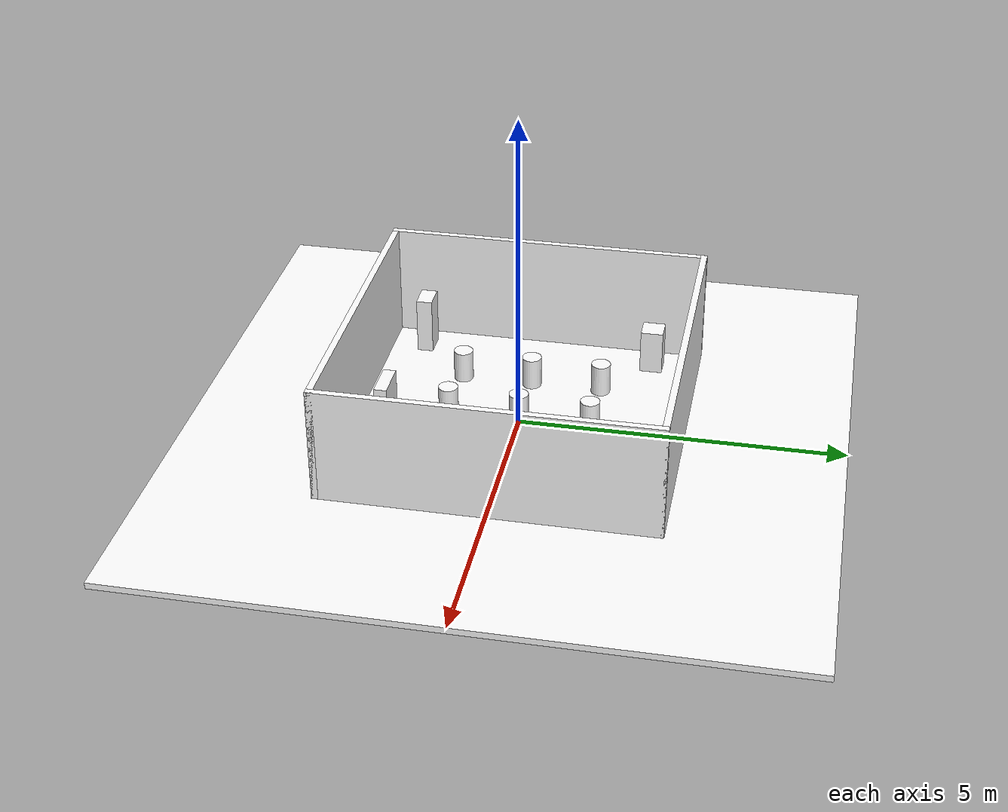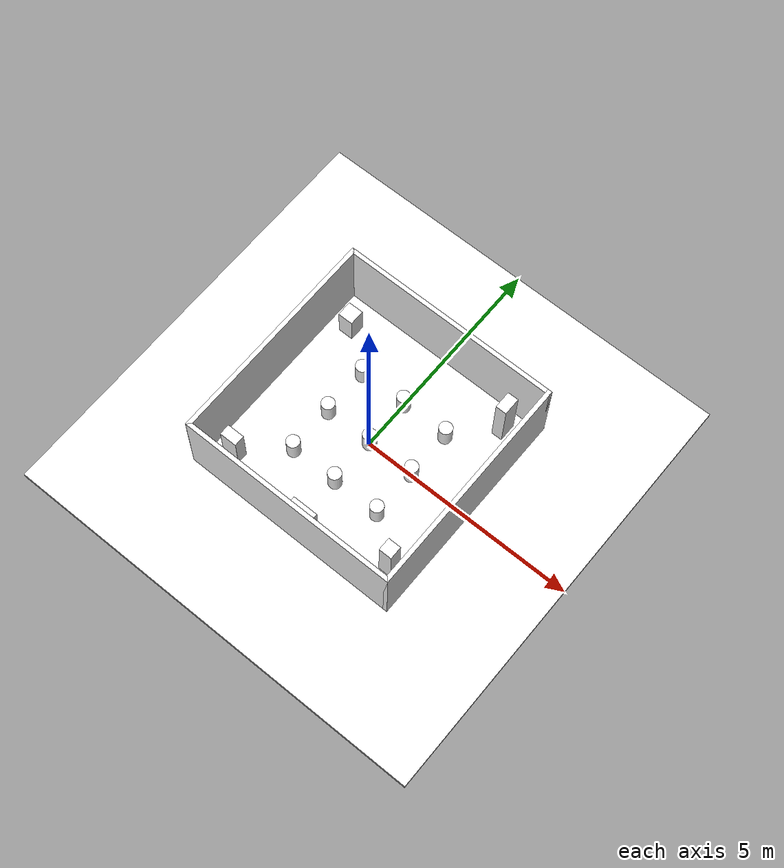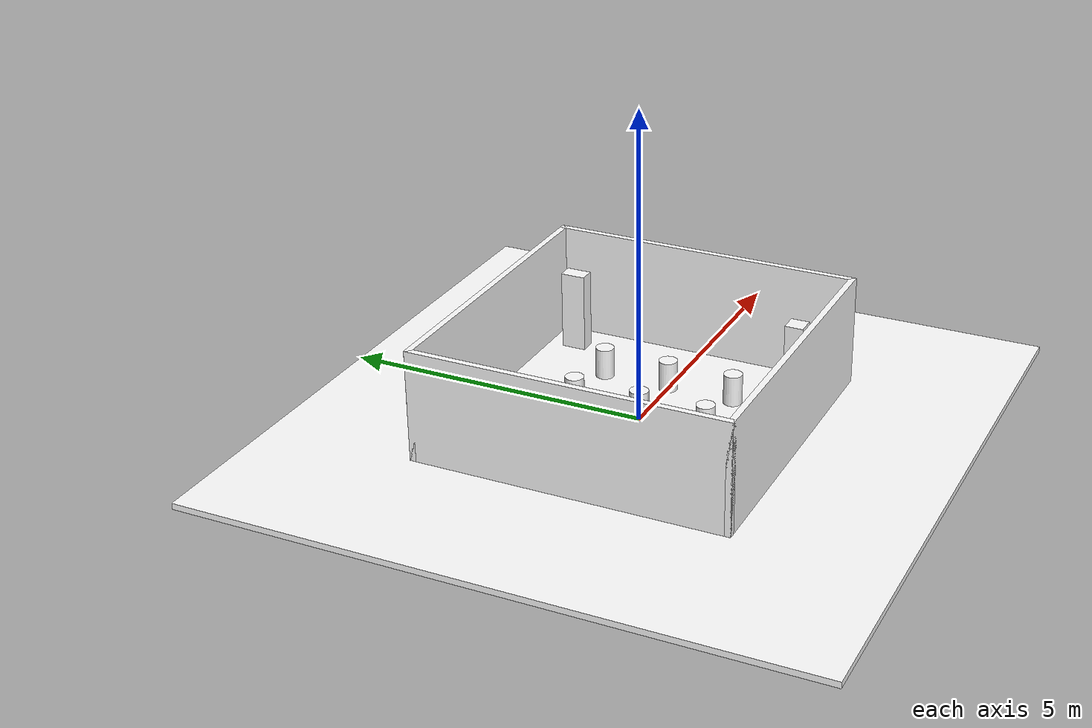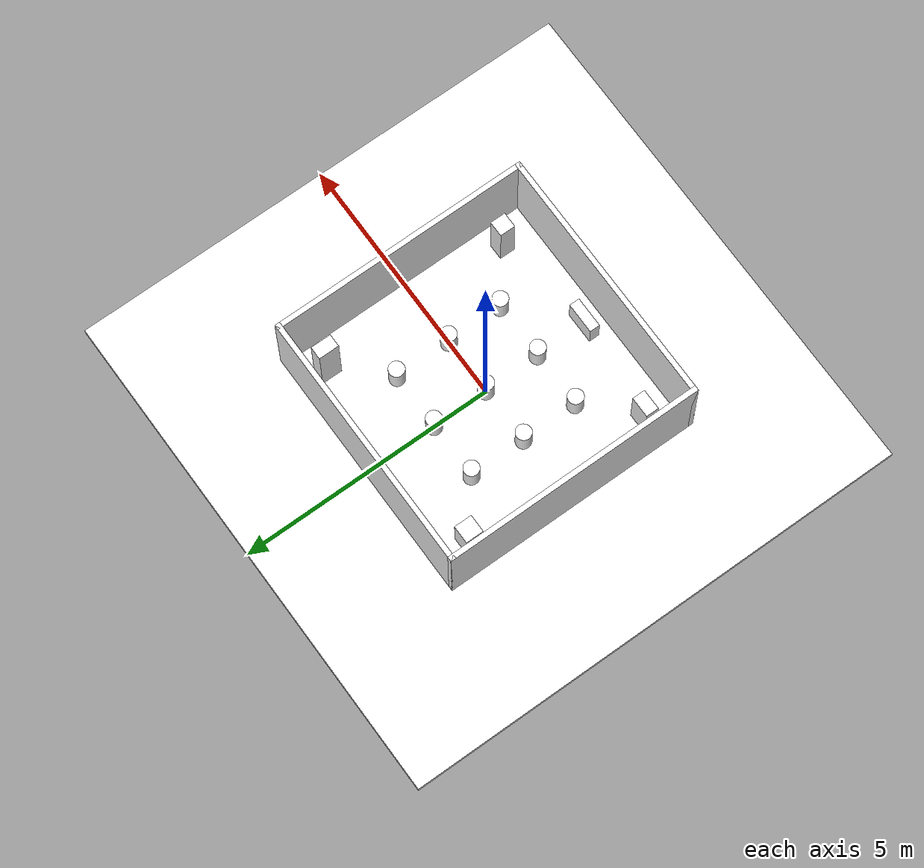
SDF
<?xml version="1.0"?>
<sdf version="1.8">
  <world name="textured_tb3_world">

    <physics name="1ms" type="ignored">
      <max_step_size>0.001</max_step_size>
      <real_time_factor>1.0</real_time_factor>
    </physics>

    <plugin filename="gz-sim-physics-system" name="gz::sim::systems::Physics"/>
    <plugin filename="gz-sim-sensors-system" name="gz::sim::systems::Sensors">
      <render_engine>ogre2</render_engine>
    </plugin>
    <plugin filename="gz-sim-user-commands-system" name="gz::sim::systems::UserCommands"/>
    <plugin filename="gz-sim-scene-broadcaster-system" name="gz::sim::systems::SceneBroadcaster"/>
    <plugin filename="gz-sim-imu-system" name="gz::sim::systems::Imu"/>

    <scene>
      <ambient>0.6 0.6 0.6 1</ambient>
      <background>0.7 0.75 0.8 1</background>
      <shadows>true</shadows>
    </scene>

    <light type="directional" name="sun">
      <cast_shadows>true</cast_shadows>
      <pose>0 0 10 0 0 0</pose>
      <diffuse>0.9 0.9 0.9 1</diffuse>
      <specular>0.2 0.2 0.2 1</specular>
      <direction>-0.4 0.3 -0.9</direction>
    </light>

    <!-- fill light: keeps pillar backs from going black, where ORB would
         otherwise find nothing -->
    <light type="directional" name="fill">
      <cast_shadows>false</cast_shadows>
      <pose>0 0 8 0 0 0</pose>
      <diffuse>0.4 0.4 0.45 1</diffuse>
      <direction>0.5 -0.4 -0.8</direction>
    </light>

    <model name="floor">
      <static>true</static>
      <link name="link">
        <collision name="collision">
          <geometry><box><size>10 10 0.1</size></box></geometry>
        </collision>
        <visual name="visual">
          <geometry><box><size>10 10 0.1</size></box></geometry>
          <material>
            <diffuse>1 1 1 1</diffuse>
            <pbr><metal>
              <albedo_map>../materials/textures/floor.png</albedo_map>
              <roughness>0.9</roughness>
              <metalness>0.0</metalness>
            </metal></pbr>
          </material>
        </visual>
      </link>
      <pose>0 0 -0.05 0 0 0</pose>
    </model>

    <model name="wall_north">
      <static>true</static>
      <pose>2.5 0 0.9 0 0 0</pose>
      <link name="link">
        <collision name="collision">
          <geometry><box><size>0.1 5.1 1.8</size></box></geometry>
        </collision>
        <visual name="visual">
          <geometry><box><size>0.1 5.1 1.8</size></box></geometry>
          <material>
            <diffuse>1 1 1 1</diffuse>
            <pbr><metal>
              <albedo_map>../materials/textures/wall_1.png</albedo_map>
              <roughness>0.9</roughness>
              <metalness>0.0</metalness>
            </metal></pbr>
          </material>
        </visual>
      </link>
    </model>

    <model name="wall_south">
      <static>true</static>
      <pose>-2.5 0 0.9 0 0 0</pose>
      <link name="link">
        <collision name="collision">
          <geometry><box><size>0.1 5.1 1.8</size></box></geometry>
        </collision>
        <visual name="visual">
          <geometry><box><size>0.1 5.1 1.8</size></box></geometry>
          <material>
            <diffuse>1 1 1 1</diffuse>
            <pbr><metal>
              <albedo_map>../materials/textures/wall_2.png</albedo_map>
              <roughness>0.9</roughness>
              <metalness>0.0</metalness>
            </metal></pbr>
          </material>
        </visual>
      </link>
    </model>

    <model name="wall_east">
      <static>true</static>
      <pose>0 2.5 0.9 0 0 0</pose>
      <link name="link">
        <collision name="collision">
          <geometry><box><size>5.1 0.1 1.8</size></box></geometry>
        </collision>
        <visual name="visual">
          <geometry><box><size>5.1 0.1 1.8</size></box></geometry>
          <material>
            <diffuse>1 1 1 1</diffuse>
            <pbr><metal>
              <albedo_map>../materials/textures/wall_3.png</albedo_map>
              <roughness>0.9</roughness>
              <metalness>0.0</metalness>
            </metal></pbr>
          </material>
        </visual>
      </link>
    </model>

    <model name="wall_west">
      <static>true</static>
      <pose>0 -2.5 0.9 0 0 0</pose>
      <link name="link">
        <collision name="collision">
          <geometry><box><size>5.1 0.1 1.8</size></box></geometry>
        </collision>
        <visual name="visual">
          <geometry><box><size>5.1 0.1 1.8</size></box></geometry>
          <material>
            <diffuse>1 1 1 1</diffuse>
            <pbr><metal>
              <albedo_map>../materials/textures/wall_4.png</albedo_map>
              <roughness>0.9</roughness>
              <metalness>0.0</metalness>
            </metal></pbr>
          </material>
        </visual>
      </link>
    </model>

    <model name="pillar_1">
      <static>true</static>
      <pose>-1.1 -1.1 0.25 0 0 0</pose>
      <link name="link">
        <collision name="collision">
          <geometry><cylinder><radius>0.15</radius><length>0.5</length></cylinder></geometry>
        </collision>
        <visual name="visual">
          <geometry><cylinder><radius>0.15</radius><length>0.5</length></cylinder></geometry>
          <material>
            <diffuse>1 1 1 1</diffuse>
            <pbr><metal>
              <albedo_map>../materials/textures/pillar_1.png</albedo_map>
              <roughness>0.9</roughness>
              <metalness>0.0</metalness>
            </metal></pbr>
          </material>
        </visual>
      </link>
    </model>

    <model name="pillar_2">
      <static>true</static>
      <pose>-1.1 0.0 0.25 0 0 0</pose>
      <link name="link">
        <collision name="collision">
          <geometry><cylinder><radius>0.15</radius><length>0.5</length></cylinder></geometry>
        </collision>
        <visual name="visual">
          <geometry><cylinder><radius>0.15</radius><length>0.5</length></cylinder></geometry>
          <material>
            <diffuse>1 1 1 1</diffuse>
            <pbr><metal>
              <albedo_map>../materials/textures/pillar_2.png</albedo_map>
              <roughness>0.9</roughness>
              <metalness>0.0</metalness>
            </metal></pbr>
          </material>
        </visual>
      </link>
    </model>

    <model name="pillar_3">
      <static>true</static>
      <pose>-1.1 1.1 0.25 0 0 0</pose>
      <link name="link">
        <collision name="collision">
          <geometry><cylinder><radius>0.15</radius><length>0.5</length></cylinder></geometry>
        </collision>
        <visual name="visual">
          <geometry><cylinder><radius>0.15</radius><length>0.5</length></cylinder></geometry>
          <material>
            <diffuse>1 1 1 1</diffuse>
            <pbr><metal>
              <albedo_map>../materials/textures/pillar_3.png</albedo_map>
              <roughness>0.9</roughness>
              <metalness>0.0</metalness>
            </metal></pbr>
          </material>
        </visual>
      </link>
    </model>

    <model name="pillar_4">
      <static>true</static>
      <pose>0.0 -1.1 0.25 0 0 0</pose>
      <link name="link">
        <collision name="collision">
          <geometry><cylinder><radius>0.15</radius><length>0.5</length></cylinder></geometry>
        </collision>
        <visual name="visual">
          <geometry><cylinder><radius>0.15</radius><length>0.5</length></cylinder></geometry>
          <material>
            <diffuse>1 1 1 1</diffuse>
            <pbr><metal>
              <albedo_map>../materials/textures/pillar_4.png</albedo_map>
              <roughness>0.9</roughness>
              <metalness>0.0</metalness>
            </metal></pbr>
          </material>
        </visual>
      </link>
    </model>

    <model name="pillar_5">
      <static>true</static>
      <pose>0.0 0.0 0.25 0 0 0</pose>
      <link name="link">
        <collision name="collision">
          <geometry><cylinder><radius>0.15</radius><length>0.5</length></cylinder></geometry>
        </collision>
        <visual name="visual">
          <geometry><cylinder><radius>0.15</radius><length>0.5</length></cylinder></geometry>
          <material>
            <diffuse>1 1 1 1</diffuse>
            <pbr><metal>
              <albedo_map>../materials/textures/pillar_5.png</albedo_map>
              <roughness>0.9</roughness>
              <metalness>0.0</metalness>
            </metal></pbr>
          </material>
        </visual>
      </link>
    </model>

    <model name="pillar_6">
      <static>true</static>
      <pose>0.0 1.1 0.25 0 0 0</pose>
      <link name="link">
        <collision name="collision">
          <geometry><cylinder><radius>0.15</radius><length>0.5</length></cylinder></geometry>
        </collision>
        <visual name="visual">
          <geometry><cylinder><radius>0.15</radius><length>0.5</length></cylinder></geometry>
          <material>
            <diffuse>1 1 1 1</diffuse>
            <pbr><metal>
              <albedo_map>../materials/textures/pillar_6.png</albedo_map>
              <roughness>0.9</roughness>
              <metalness>0.0</metalness>
            </metal></pbr>
          </material>
        </visual>
      </link>
    </model>

    <model name="pillar_7">
      <static>true</static>
      <pose>1.1 -1.1 0.25 0 0 0</pose>
      <link name="link">
        <collision name="collision">
          <geometry><cylinder><radius>0.15</radius><length>0.5</length></cylinder></geometry>
        </collision>
        <visual name="visual">
          <geometry><cylinder><radius>0.15</radius><length>0.5</length></cylinder></geometry>
          <material>
            <diffuse>1 1 1 1</diffuse>
            <pbr><metal>
              <albedo_map>../materials/textures/pillar_7.png</albedo_map>
              <roughness>0.9</roughness>
              <metalness>0.0</metalness>
            </metal></pbr>
          </material>
        </visual>
      </link>
    </model>

    <model name="pillar_8">
      <static>true</static>
      <pose>1.1 0.0 0.25 0 0 0</pose>
      <link name="link">
        <collision name="collision">
          <geometry><cylinder><radius>0.15</radius><length>0.5</length></cylinder></geometry>
        </collision>
        <visual name="visual">
          <geometry><cylinder><radius>0.15</radius><length>0.5</length></cylinder></geometry>
          <material>
            <diffuse>1 1 1 1</diffuse>
            <pbr><metal>
              <albedo_map>../materials/textures/pillar_8.png</albedo_map>
              <roughness>0.9</roughness>
              <metalness>0.0</metalness>
            </metal></pbr>
          </material>
        </visual>
      </link>
    </model>

    <model name="pillar_9">
      <static>true</static>
      <pose>1.1 1.1 0.25 0 0 0</pose>
      <link name="link">
        <collision name="collision">
          <geometry><cylinder><radius>0.15</radius><length>0.5</length></cylinder></geometry>
        </collision>
        <visual name="visual">
          <geometry><cylinder><radius>0.15</radius><length>0.5</length></cylinder></geometry>
          <material>
            <diffuse>1 1 1 1</diffuse>
            <pbr><metal>
              <albedo_map>../materials/textures/pillar_9.png</albedo_map>
              <roughness>0.9</roughness>
              <metalness>0.0</metalness>
            </metal></pbr>
          </material>
        </visual>
      </link>
    </model>

    <model name="block_1">
      <static>true</static>
      <pose>-2.0 1.8 0.35 0 0 0</pose>
      <link name="link">
        <collision name="collision">
          <geometry><box><size>0.35 0.35 0.7</size></box></geometry>
        </collision>
        <visual name="visual">
          <geometry><box><size>0.35 0.35 0.7</size></box></geometry>
          <material>
            <diffuse>1 1 1 1</diffuse>
            <pbr><metal>
              <albedo_map>../materials/textures/pillar_2.png</albedo_map>
              <roughness>0.9</roughness>
              <metalness>0.0</metalness>
            </metal></pbr>
          </material>
        </visual>
      </link>
    </model>

    <model name="block_2">
      <static>true</static>
      <pose>2.0 -1.8 0.55 0 0 0</pose>
      <link name="link">
        <collision name="collision">
          <geometry><box><size>0.3 0.3 1.1</size></box></geometry>
        </collision>
        <visual name="visual">
          <geometry><box><size>0.3 0.3 1.1</size></box></geometry>
          <material>
            <diffuse>1 1 1 1</diffuse>
            <pbr><metal>
              <albedo_map>../materials/textures/pillar_5.png</albedo_map>
              <roughness>0.9</roughness>
              <metalness>0.0</metalness>
            </metal></pbr>
          </material>
        </visual>
      </link>
    </model>

    <model name="block_3">
      <static>true</static>
      <pose>-2.0 -1.9 0.45 0 0 0</pose>
      <link name="link">
        <collision name="collision">
          <geometry><box><size>0.4 0.25 0.9</size></box></geometry>
        </collision>
        <visual name="visual">
          <geometry><box><size>0.4 0.25 0.9</size></box></geometry>
          <material>
            <diffuse>1 1 1 1</diffuse>
            <pbr><metal>
              <albedo_map>../materials/textures/pillar_7.png</albedo_map>
              <roughness>0.9</roughness>
              <metalness>0.0</metalness>
            </metal></pbr>
          </material>
        </visual>
      </link>
    </model>

    <model name="block_4">
      <static>true</static>
      <pose>1.9 2.0 0.65 0 0 0</pose>
      <link name="link">
        <collision name="collision">
          <geometry><box><size>0.25 0.4 1.3</size></box></geometry>
        </collision>
        <visual name="visual">
          <geometry><box><size>0.25 0.4 1.3</size></box></geometry>
          <material>
            <diffuse>1 1 1 1</diffuse>
            <pbr><metal>
              <albedo_map>../materials/textures/pillar_3.png</albedo_map>
              <roughness>0.9</roughness>
              <metalness>0.0</metalness>
            </metal></pbr>
          </material>
        </visual>
      </link>
    </model>

    <model name="block_5">
      <static>true</static>
      <pose>0.0 -2.1 0.25 0 0 0</pose>
      <link name="link">
        <collision name="collision">
          <geometry><box><size>0.6 0.2 0.5</size></box></geometry>
        </collision>
        <visual name="visual">
          <geometry><box><size>0.6 0.2 0.5</size></box></geometry>
          <material>
            <diffuse>1 1 1 1</diffuse>
            <pbr><metal>
              <albedo_map>../materials/textures/pillar_9.png</albedo_map>
              <roughness>0.9</roughness>
              <metalness>0.0</metalness>
            </metal></pbr>
          </material>
        </visual>
      </link>
    </model>

  </world>
</sdf>
